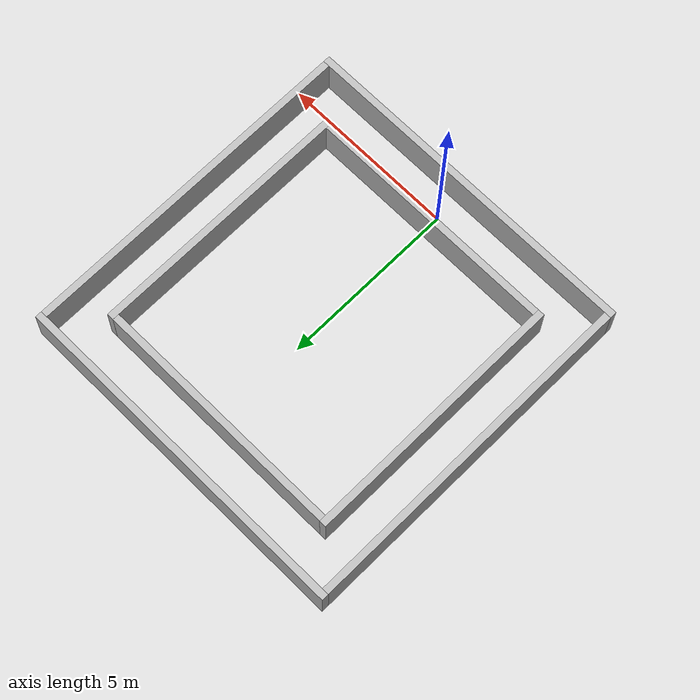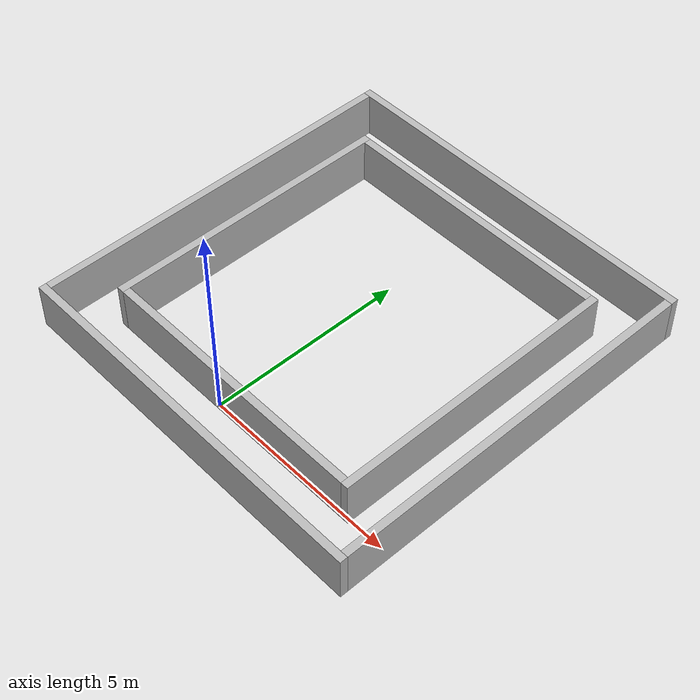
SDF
<?xml version="1.0"?>
<sdf version="1.6">
  <model name="circuit">
    <static>true</static>

    <link name="OuterWall1">
        <collision name="collision1">
         <pose>0 9 0 0 0 0</pose>
          <geometry>
            <box>
              <size>10 0.2 1.2</size>
            </box>
          </geometry>
       </collision>

        <visual name="visual1">
          <pose>0 9 0 0 0 0</pose>
          <geometry>
            <box>
              <size>10 0.2 1.2</size>
            </box>
          </geometry>
          <material>
            <script>Gazebo/Orange</script>
         </material>
        </visual>
    </link>

    <link name="OuterWall2">
        <collision name="collision2">
         <pose>0 -1 0 0 0 0</pose>
          <geometry>
            <box>
              <size>10 0.2 1.2</size>
            </box>
          </geometry>
       </collision>

        <visual name="visual2">
          <pose>0 -1 0 0 0 0</pose>
          <geometry>
            <box>
              <size>10 0.2 1.2</size>
            </box>
          </geometry>
          <material>
            <script>Gazebo/Orange</script>
         </material>
        </visual>
    </link>

    <link name="OuterWall3">
        <collision name="collision3">
         <pose>4.9 4 0 0 0 1.5707</pose>
          <geometry>
            <box>
              <size>9.8 0.2 1.2</size>
            </box>
          </geometry>
       </collision>

        <visual name="visual3">
          <pose>4.9 4 0 0 0 1.5707</pose>
          <geometry>
            <box>
              <size>9.8 0.2 1.2</size>
            </box>
          </geometry>
          <material>
            <script>Gazebo/Orange</script>
         </material>
        </visual>
    </link>

    <link name="OuterWall4">
        <collision name="collision4">
         <pose>-4.9 4 0 0 0 1.5707</pose>
          <geometry>
            <box>
              <size>9.8 0.2 1.2</size>
            </box>
          </geometry>
       </collision>

        <visual name="visual4">
          <pose>-4.9 4 0 0 0 1.5707</pose>
          <geometry>
            <box>
              <size>9.8 0.2 1.2</size>
            </box>
          </geometry>
          <material>
            <script>Gazebo/Orange</script>
         </material>
        </visual>
    </link>

    <link name="InnerWall1">
        <collision name="collision5">
         <pose>0 7.7 0 0 0 0</pose>
          <geometry>
            <box>
              <size>7.2 0.2 1.2</size>
            </box>
          </geometry>
       </collision>

        <visual name="visual5">
          <pose>0 7.7 0 0 0 0</pose>
          <geometry>
            <box>
              <size>7.2 0.2 1.2</size>
            </box>
          </geometry>
          <material>
            <script>Gazebo/Orange</script>
         </material>
        </visual>
    </link>

    <link name="InnerWall2">
        <collision name="collision6">
         <pose>0 0.3 0 0 0 0</pose>
          <geometry>
            <box>
              <size>7.2 0.2 1.2</size>
            </box>
          </geometry>
       </collision>

        <visual name="visual6">
          <pose>0 0.3 0 0 0 0</pose>
          <geometry>
            <box>
              <size>7.2 0.2 1.2</size>
            </box>
          </geometry>
          <material>
            <script>Gazebo/Orange</script>
         </material>
        </visual>
    </link>

    <link name="InnerWall3">
        <collision name="collision7">
         <pose>3.7 4 0 0 0 1.5707</pose>
          <geometry>
            <box>
              <size>7.6 0.2 1.2</size>
            </box>
          </geometry>
       </collision>

        <visual name="visual7">
          <pose>3.7 4 0 0 0 1.5707</pose>
          <geometry>
            <box>
              <size>7.6 0.2 1.2</size>
            </box>
          </geometry>
          <material>
            <script>Gazebo/Orange</script>
         </material>
        </visual>
    </link>

    <link name="InnerWall4">
        <collision name="collision8">
         <pose>-3.7 4 0 0 0 1.5707</pose>
          <geometry>
            <box>
              <size>7.6 0.2 1.2</size>
            </box>
          </geometry>
       </collision>

        <visual name="visual8">
          <pose>-3.7 4 0 0 0 1.5707</pose>
          <geometry>
            <box>
              <size>7.6 0.2 1.2</size>
            </box>
          </geometry>
          <material>
            <script>Gazebo/Orange</script>
         </material>
        </visual>
    </link>

  </model>
</sdf>
